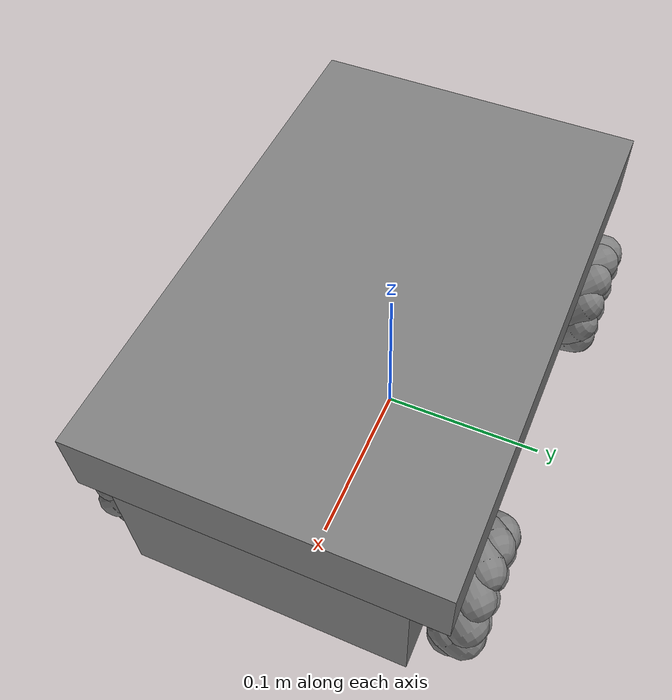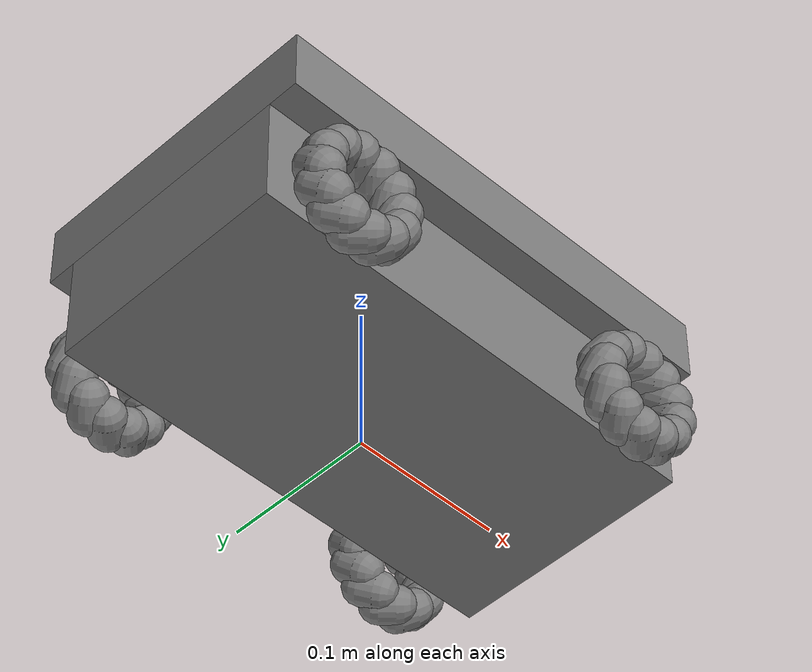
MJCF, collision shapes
<mujoco model="myagv">
  <compiler angle="radian" meshdir="." autolimits="true"/>

  <default>
    <default class="myagv">
      <default class="visual">
        <geom type="mesh" group="2" contype="0" conaffinity="0" density="0"/>
      </default>
      <default class="collision">
        <geom group="3" contype="1" conaffinity="0" condim="3" friction="0.8 0.005 0.0001" density="0"/>
      </default>
      <default class="roller">
        <geom type="capsule" group="3" contype="1" conaffinity="0" condim="3" friction="1.0 0.005 0.0001"/>
        <joint type="hinge" damping="1e-5" armature="1e-6" frictionloss="0"/>
      </default>
      <default class="wheel">
        <joint type="hinge" axis="0 1 0" damping="0.001" armature="1e-4"/>
        <velocity kv="0.3" ctrlrange="-22.5 22.5" forcerange="-1.5 1.5"/>
      </default>
    </default>
  </default>

  <asset>
    <mesh name="myagv_base_m0" file="derived_meshes/urdf/myagv_base.dae.m0.obj"/>
    <material name="myagv_base_m0" rgba="0.980392 0.980392 0.980392 1"/>
    <mesh name="myagv_up_m0" file="derived_meshes/urdf/myagv_up.dae.m0.obj"/>
    <material name="myagv_up_m0" rgba="0.980392 0.980392 0.980392 1"/>
  </asset>

  <worldbody>
    <body name="base_footprint" childclass="myagv">
      <freejoint name="root"/>
      <inertial pos="0.0055 -0.0042 0.055" mass="3.388" diaginertia="0.0131003 0.0289392 0.0384256"/>
      <geom class="visual" mesh="myagv_base_m0" material="myagv_base_m0"/>
      <geom class="collision" name="chassis" type="box" pos="0.0065 -0.004 0.0555" size="0.155 0.08 0.0355"/>
      <site name="laser_frame" pos="0.065 0 0.08" euler="0 0 3.14159265" size="0.01" group="4"/>
      <site name="imu_link" pos="0 0 0" euler="3.14159 3.14159 0" size="0.01" group="4"/>
      <body name="camera_link" pos="0.13 0 0.131">
        <camera name="camera_link" xyaxes="0 -1 0 0 0 1" fovy="41.83" resolution="640 480"/>
      </body>
      <body name="base_up">
        <joint name="base_up" type="hinge" axis="0 0 1"/>
        <inertial pos="0.0065 -0.004 0.11" mass="0.3" diaginertia="0.00104 0.0024425 0.0034025"/>
        <geom class="visual" mesh="myagv_up_m0" material="myagv_up_m0"/>
        <geom class="collision" name="top_plate" type="box" pos="0.0065 -0.004 0.1115" size="0.155 0.1 0.0205"/>
      </body>
      <body name="front_left_wheel" pos="0.1124 0.09455 0.04">
        <joint name="front_left_wheel_joint" class="wheel"/>
        <inertial pos="0 0 0" mass="0.07" diaginertia="2.15381e-05 3.15e-05 2.15381e-05"/>
        <body name="front_left_wheel_roller_0" pos="0 0 -0.028">
          <joint name="front_left_wheel_roller_0" class="roller" axis="0.707107 -0.707107 0"/>
          <geom class="roller" size="0.012" fromto="-0.00368627 0.00368627 0 0.00368627 -0.00368627 0" mass="0.004"/>
        </body>
        <body name="front_left_wheel_roller_1" pos="-0.014 0 -0.0242487">
          <joint name="front_left_wheel_roller_1" class="roller" axis="0.612372 -0.707107 -0.353553"/>
          <geom class="roller" size="0.012" fromto="-0.0031924 0.00368627 0.00184313 0.0031924 -0.00368627 -0.00184313" mass="0.004"/>
        </body>
        <body name="front_left_wheel_roller_2" pos="-0.0242487 0 -0.014">
          <joint name="front_left_wheel_roller_2" class="roller" axis="0.353553 -0.707107 -0.612372"/>
          <geom class="roller" size="0.012" fromto="-0.00184313 0.00368627 0.0031924 0.00184313 -0.00368627 -0.0031924" mass="0.004"/>
        </body>
        <body name="front_left_wheel_roller_3" pos="-0.028 0 -1.71451e-18">
          <joint name="front_left_wheel_roller_3" class="roller" axis="4.32978e-17 -0.707107 -0.707107"/>
          <geom class="roller" size="0.012" fromto="0 0.00368627 0.00368627 0 -0.00368627 -0.00368627" mass="0.004"/>
        </body>
        <body name="front_left_wheel_roller_4" pos="-0.0242487 0 0.014">
          <joint name="front_left_wheel_roller_4" class="roller" axis="-0.353553 -0.707107 -0.612372"/>
          <geom class="roller" size="0.012" fromto="0.00184313 0.00368627 0.0031924 -0.00184313 -0.00368627 -0.0031924" mass="0.004"/>
        </body>
        <body name="front_left_wheel_roller_5" pos="-0.014 0 0.0242487">
          <joint name="front_left_wheel_roller_5" class="roller" axis="-0.612372 -0.707107 -0.353553"/>
          <geom class="roller" size="0.012" fromto="0.0031924 0.00368627 0.00184313 -0.0031924 -0.00368627 -0.00184313" mass="0.004"/>
        </body>
        <body name="front_left_wheel_roller_6" pos="-3.42901e-18 0 0.028">
          <joint name="front_left_wheel_roller_6" class="roller" axis="-0.707107 -0.707107 -8.65956e-17"/>
          <geom class="roller" size="0.012" fromto="0.00368627 0.00368627 0 -0.00368627 -0.00368627 0" mass="0.004"/>
        </body>
        <body name="front_left_wheel_roller_7" pos="0.014 0 0.0242487">
          <joint name="front_left_wheel_roller_7" class="roller" axis="-0.612372 -0.707107 0.353553"/>
          <geom class="roller" size="0.012" fromto="0.0031924 0.00368627 -0.00184313 -0.0031924 -0.00368627 0.00184313" mass="0.004"/>
        </body>
        <body name="front_left_wheel_roller_8" pos="0.0242487 0 0.014">
          <joint name="front_left_wheel_roller_8" class="roller" axis="-0.353553 -0.707107 0.612372"/>
          <geom class="roller" size="0.012" fromto="0.00184313 0.00368627 -0.0031924 -0.00184313 -0.00368627 0.0031924" mass="0.004"/>
        </body>
        <body name="front_left_wheel_roller_9" pos="0.028 0 5.14352e-18">
          <joint name="front_left_wheel_roller_9" class="roller" axis="-1.29893e-16 -0.707107 0.707107"/>
          <geom class="roller" size="0.012" fromto="0 0.00368627 -0.00368627 0 -0.00368627 0.00368627" mass="0.004"/>
        </body>
        <body name="front_left_wheel_roller_10" pos="0.0242487 0 -0.014">
          <joint name="front_left_wheel_roller_10" class="roller" axis="0.353553 -0.707107 0.612372"/>
          <geom class="roller" size="0.012" fromto="-0.00184313 0.00368627 -0.0031924 0.00184313 -0.00368627 0.0031924" mass="0.004"/>
        </body>
        <body name="front_left_wheel_roller_11" pos="0.014 0 -0.0242487">
          <joint name="front_left_wheel_roller_11" class="roller" axis="0.612372 -0.707107 0.353553"/>
          <geom class="roller" size="0.012" fromto="-0.0031924 0.00368627 -0.00184313 0.0031924 -0.00368627 0.00184313" mass="0.004"/>
        </body>
      </body>
      <body name="front_right_wheel" pos="0.1124 -0.10295 0.04">
        <joint name="front_right_wheel_joint" class="wheel"/>
        <inertial pos="0 0 0" mass="0.07" diaginertia="2.15381e-05 3.15e-05 2.15381e-05"/>
        <body name="front_right_wheel_roller_0" pos="0 0 -0.028">
          <joint name="front_right_wheel_roller_0" class="roller" axis="0.707107 0.707107 0"/>
          <geom class="roller" size="0.012" fromto="-0.00368627 -0.00368627 0 0.00368627 0.00368627 0" mass="0.004"/>
        </body>
        <body name="front_right_wheel_roller_1" pos="-0.014 0 -0.0242487">
          <joint name="front_right_wheel_roller_1" class="roller" axis="0.612372 0.707107 -0.353553"/>
          <geom class="roller" size="0.012" fromto="-0.0031924 -0.00368627 0.00184313 0.0031924 0.00368627 -0.00184313" mass="0.004"/>
        </body>
        <body name="front_right_wheel_roller_2" pos="-0.0242487 0 -0.014">
          <joint name="front_right_wheel_roller_2" class="roller" axis="0.353553 0.707107 -0.612372"/>
          <geom class="roller" size="0.012" fromto="-0.00184313 -0.00368627 0.0031924 0.00184313 0.00368627 -0.0031924" mass="0.004"/>
        </body>
        <body name="front_right_wheel_roller_3" pos="-0.028 0 -1.71451e-18">
          <joint name="front_right_wheel_roller_3" class="roller" axis="4.32978e-17 0.707107 -0.707107"/>
          <geom class="roller" size="0.012" fromto="0 -0.00368627 0.00368627 0 0.00368627 -0.00368627" mass="0.004"/>
        </body>
        <body name="front_right_wheel_roller_4" pos="-0.0242487 0 0.014">
          <joint name="front_right_wheel_roller_4" class="roller" axis="-0.353553 0.707107 -0.612372"/>
          <geom class="roller" size="0.012" fromto="0.00184313 -0.00368627 0.0031924 -0.00184313 0.00368627 -0.0031924" mass="0.004"/>
        </body>
        <body name="front_right_wheel_roller_5" pos="-0.014 0 0.0242487">
          <joint name="front_right_wheel_roller_5" class="roller" axis="-0.612372 0.707107 -0.353553"/>
          <geom class="roller" size="0.012" fromto="0.0031924 -0.00368627 0.00184313 -0.0031924 0.00368627 -0.00184313" mass="0.004"/>
        </body>
        <body name="front_right_wheel_roller_6" pos="-3.42901e-18 0 0.028">
          <joint name="front_right_wheel_roller_6" class="roller" axis="-0.707107 0.707107 -8.65956e-17"/>
          <geom class="roller" size="0.012" fromto="0.00368627 -0.00368627 0 -0.00368627 0.00368627 0" mass="0.004"/>
        </body>
        <body name="front_right_wheel_roller_7" pos="0.014 0 0.0242487">
          <joint name="front_right_wheel_roller_7" class="roller" axis="-0.612372 0.707107 0.353553"/>
          <geom class="roller" size="0.012" fromto="0.0031924 -0.00368627 -0.00184313 -0.0031924 0.00368627 0.00184313" mass="0.004"/>
        </body>
        <body name="front_right_wheel_roller_8" pos="0.0242487 0 0.014">
          <joint name="front_right_wheel_roller_8" class="roller" axis="-0.353553 0.707107 0.612372"/>
          <geom class="roller" size="0.012" fromto="0.00184313 -0.00368627 -0.0031924 -0.00184313 0.00368627 0.0031924" mass="0.004"/>
        </body>
        <body name="front_right_wheel_roller_9" pos="0.028 0 5.14352e-18">
          <joint name="front_right_wheel_roller_9" class="roller" axis="-1.29893e-16 0.707107 0.707107"/>
          <geom class="roller" size="0.012" fromto="0 -0.00368627 -0.00368627 0 0.00368627 0.00368627" mass="0.004"/>
        </body>
        <body name="front_right_wheel_roller_10" pos="0.0242487 0 -0.014">
          <joint name="front_right_wheel_roller_10" class="roller" axis="0.353553 0.707107 0.612372"/>
          <geom class="roller" size="0.012" fromto="-0.00184313 -0.00368627 -0.0031924 0.00184313 0.00368627 0.0031924" mass="0.004"/>
        </body>
        <body name="front_right_wheel_roller_11" pos="0.014 0 -0.0242487">
          <joint name="front_right_wheel_roller_11" class="roller" axis="0.612372 0.707107 0.353553"/>
          <geom class="roller" size="0.012" fromto="-0.0031924 -0.00368627 -0.00184313 0.0031924 0.00368627 0.00184313" mass="0.004"/>
        </body>
      </body>
      <body name="rear_left_wheel" pos="-0.1014 0.09455 0.04">
        <joint name="rear_left_wheel_joint" class="wheel"/>
        <inertial pos="0 0 0" mass="0.07" diaginertia="2.15381e-05 3.15e-05 2.15381e-05"/>
        <body name="rear_left_wheel_roller_0" pos="0 0 -0.028">
          <joint name="rear_left_wheel_roller_0" class="roller" axis="0.707107 0.707107 0"/>
          <geom class="roller" size="0.012" fromto="-0.00368627 -0.00368627 0 0.00368627 0.00368627 0" mass="0.004"/>
        </body>
        <body name="rear_left_wheel_roller_1" pos="-0.014 0 -0.0242487">
          <joint name="rear_left_wheel_roller_1" class="roller" axis="0.612372 0.707107 -0.353553"/>
          <geom class="roller" size="0.012" fromto="-0.0031924 -0.00368627 0.00184313 0.0031924 0.00368627 -0.00184313" mass="0.004"/>
        </body>
        <body name="rear_left_wheel_roller_2" pos="-0.0242487 0 -0.014">
          <joint name="rear_left_wheel_roller_2" class="roller" axis="0.353553 0.707107 -0.612372"/>
          <geom class="roller" size="0.012" fromto="-0.00184313 -0.00368627 0.0031924 0.00184313 0.00368627 -0.0031924" mass="0.004"/>
        </body>
        <body name="rear_left_wheel_roller_3" pos="-0.028 0 -1.71451e-18">
          <joint name="rear_left_wheel_roller_3" class="roller" axis="4.32978e-17 0.707107 -0.707107"/>
          <geom class="roller" size="0.012" fromto="0 -0.00368627 0.00368627 0 0.00368627 -0.00368627" mass="0.004"/>
        </body>
        <body name="rear_left_wheel_roller_4" pos="-0.0242487 0 0.014">
          <joint name="rear_left_wheel_roller_4" class="roller" axis="-0.353553 0.707107 -0.612372"/>
          <geom class="roller" size="0.012" fromto="0.00184313 -0.00368627 0.0031924 -0.00184313 0.00368627 -0.0031924" mass="0.004"/>
        </body>
        <body name="rear_left_wheel_roller_5" pos="-0.014 0 0.0242487">
          <joint name="rear_left_wheel_roller_5" class="roller" axis="-0.612372 0.707107 -0.353553"/>
          <geom class="roller" size="0.012" fromto="0.0031924 -0.00368627 0.00184313 -0.0031924 0.00368627 -0.00184313" mass="0.004"/>
        </body>
        <body name="rear_left_wheel_roller_6" pos="-3.42901e-18 0 0.028">
          <joint name="rear_left_wheel_roller_6" class="roller" axis="-0.707107 0.707107 -8.65956e-17"/>
          <geom class="roller" size="0.012" fromto="0.00368627 -0.00368627 0 -0.00368627 0.00368627 0" mass="0.004"/>
        </body>
        <body name="rear_left_wheel_roller_7" pos="0.014 0 0.0242487">
          <joint name="rear_left_wheel_roller_7" class="roller" axis="-0.612372 0.707107 0.353553"/>
          <geom class="roller" size="0.012" fromto="0.0031924 -0.00368627 -0.00184313 -0.0031924 0.00368627 0.00184313" mass="0.004"/>
        </body>
        <body name="rear_left_wheel_roller_8" pos="0.0242487 0 0.014">
          <joint name="rear_left_wheel_roller_8" class="roller" axis="-0.353553 0.707107 0.612372"/>
          <geom class="roller" size="0.012" fromto="0.00184313 -0.00368627 -0.0031924 -0.00184313 0.00368627 0.0031924" mass="0.004"/>
        </body>
        <body name="rear_left_wheel_roller_9" pos="0.028 0 5.14352e-18">
          <joint name="rear_left_wheel_roller_9" class="roller" axis="-1.29893e-16 0.707107 0.707107"/>
          <geom class="roller" size="0.012" fromto="0 -0.00368627 -0.00368627 0 0.00368627 0.00368627" mass="0.004"/>
        </body>
        <body name="rear_left_wheel_roller_10" pos="0.0242487 0 -0.014">
          <joint name="rear_left_wheel_roller_10" class="roller" axis="0.353553 0.707107 0.612372"/>
          <geom class="roller" size="0.012" fromto="-0.00184313 -0.00368627 -0.0031924 0.00184313 0.00368627 0.0031924" mass="0.004"/>
        </body>
        <body name="rear_left_wheel_roller_11" pos="0.014 0 -0.0242487">
          <joint name="rear_left_wheel_roller_11" class="roller" axis="0.612372 0.707107 0.353553"/>
          <geom class="roller" size="0.012" fromto="-0.0031924 -0.00368627 -0.00184313 0.0031924 0.00368627 0.00184313" mass="0.004"/>
        </body>
      </body>
      <body name="rear_right_wheel" pos="-0.1014 -0.10295 0.04">
        <joint name="rear_right_wheel_joint" class="wheel"/>
        <inertial pos="0 0 0" mass="0.07" diaginertia="2.15381e-05 3.15e-05 2.15381e-05"/>
        <body name="rear_right_wheel_roller_0" pos="0 0 -0.028">
          <joint name="rear_right_wheel_roller_0" class="roller" axis="0.707107 -0.707107 0"/>
          <geom class="roller" size="0.012" fromto="-0.00368627 0.00368627 0 0.00368627 -0.00368627 0" mass="0.004"/>
        </body>
        <body name="rear_right_wheel_roller_1" pos="-0.014 0 -0.0242487">
          <joint name="rear_right_wheel_roller_1" class="roller" axis="0.612372 -0.707107 -0.353553"/>
          <geom class="roller" size="0.012" fromto="-0.0031924 0.00368627 0.00184313 0.0031924 -0.00368627 -0.00184313" mass="0.004"/>
        </body>
        <body name="rear_right_wheel_roller_2" pos="-0.0242487 0 -0.014">
          <joint name="rear_right_wheel_roller_2" class="roller" axis="0.353553 -0.707107 -0.612372"/>
          <geom class="roller" size="0.012" fromto="-0.00184313 0.00368627 0.0031924 0.00184313 -0.00368627 -0.0031924" mass="0.004"/>
        </body>
        <body name="rear_right_wheel_roller_3" pos="-0.028 0 -1.71451e-18">
          <joint name="rear_right_wheel_roller_3" class="roller" axis="4.32978e-17 -0.707107 -0.707107"/>
          <geom class="roller" size="0.012" fromto="0 0.00368627 0.00368627 0 -0.00368627 -0.00368627" mass="0.004"/>
        </body>
        <body name="rear_right_wheel_roller_4" pos="-0.0242487 0 0.014">
          <joint name="rear_right_wheel_roller_4" class="roller" axis="-0.353553 -0.707107 -0.612372"/>
          <geom class="roller" size="0.012" fromto="0.00184313 0.00368627 0.0031924 -0.00184313 -0.00368627 -0.0031924" mass="0.004"/>
        </body>
        <body name="rear_right_wheel_roller_5" pos="-0.014 0 0.0242487">
          <joint name="rear_right_wheel_roller_5" class="roller" axis="-0.612372 -0.707107 -0.353553"/>
          <geom class="roller" size="0.012" fromto="0.0031924 0.00368627 0.00184313 -0.0031924 -0.00368627 -0.00184313" mass="0.004"/>
        </body>
        <body name="rear_right_wheel_roller_6" pos="-3.42901e-18 0 0.028">
          <joint name="rear_right_wheel_roller_6" class="roller" axis="-0.707107 -0.707107 -8.65956e-17"/>
          <geom class="roller" size="0.012" fromto="0.00368627 0.00368627 0 -0.00368627 -0.00368627 0" mass="0.004"/>
        </body>
        <body name="rear_right_wheel_roller_7" pos="0.014 0 0.0242487">
          <joint name="rear_right_wheel_roller_7" class="roller" axis="-0.612372 -0.707107 0.353553"/>
          <geom class="roller" size="0.012" fromto="0.0031924 0.00368627 -0.00184313 -0.0031924 -0.00368627 0.00184313" mass="0.004"/>
        </body>
        <body name="rear_right_wheel_roller_8" pos="0.0242487 0 0.014">
          <joint name="rear_right_wheel_roller_8" class="roller" axis="-0.353553 -0.707107 0.612372"/>
          <geom class="roller" size="0.012" fromto="0.00184313 0.00368627 -0.0031924 -0.00184313 -0.00368627 0.0031924" mass="0.004"/>
        </body>
        <body name="rear_right_wheel_roller_9" pos="0.028 0 5.14352e-18">
          <joint name="rear_right_wheel_roller_9" class="roller" axis="-1.29893e-16 -0.707107 0.707107"/>
          <geom class="roller" size="0.012" fromto="0 0.00368627 -0.00368627 0 -0.00368627 0.00368627" mass="0.004"/>
        </body>
        <body name="rear_right_wheel_roller_10" pos="0.0242487 0 -0.014">
          <joint name="rear_right_wheel_roller_10" class="roller" axis="0.353553 -0.707107 0.612372"/>
          <geom class="roller" size="0.012" fromto="-0.00184313 0.00368627 -0.0031924 0.00184313 -0.00368627 0.0031924" mass="0.004"/>
        </body>
        <body name="rear_right_wheel_roller_11" pos="0.014 0 -0.0242487">
          <joint name="rear_right_wheel_roller_11" class="roller" axis="0.612372 -0.707107 0.353553"/>
          <geom class="roller" size="0.012" fromto="-0.0031924 0.00368627 -0.00184313 0.0031924 -0.00368627 0.00184313" mass="0.004"/>
        </body>
      </body>
    </body>
  </worldbody>

  <equality>
    <!-- base_up is a continuous joint in the URDF; the real top plate is rigid (import.md). -->
    <joint name="base_up_locked" joint1="base_up" polycoef="0 0 0 0 0"/>
  </equality>

  <actuator>
    <velocity name="front_left_wheel_joint" joint="front_left_wheel_joint" class="wheel"/>
    <velocity name="front_right_wheel_joint" joint="front_right_wheel_joint" class="wheel"/>
    <velocity name="rear_left_wheel_joint" joint="rear_left_wheel_joint" class="wheel"/>
    <velocity name="rear_right_wheel_joint" joint="rear_right_wheel_joint" class="wheel"/>
  </actuator>

  <keyframe>
    <key name="home" qpos="0 0 0 1 0 0 0 0 0 0 0 0 0 0 0 0 0 0 0 0 0 0 0 0 0 0 0 0 0 0 0 0 0 0 0 0 0 0 0 0 0 0 0 0 0 0 0 0 0 0 0 0 0 0 0 0 0 0 0 0"/>
  </keyframe>
</mujoco>
